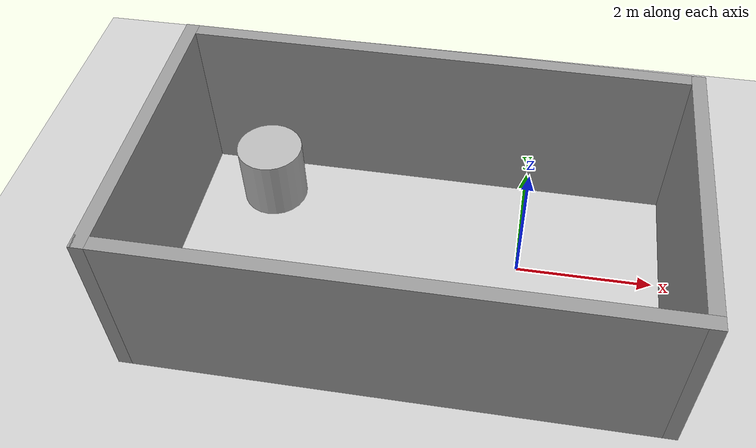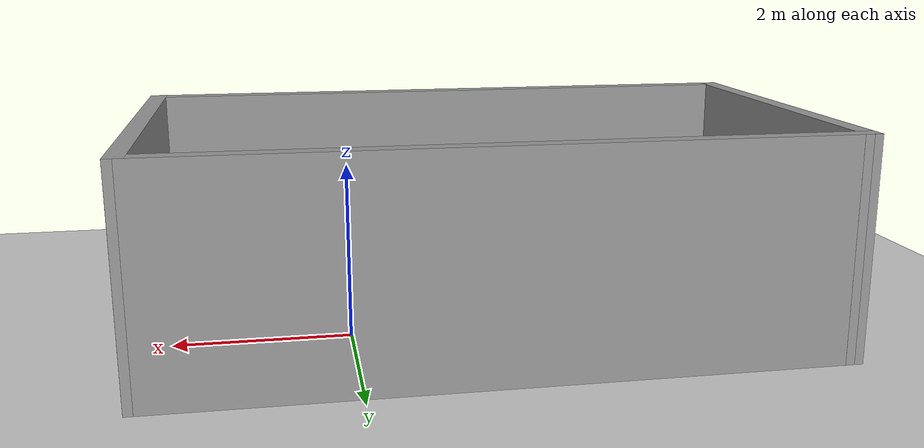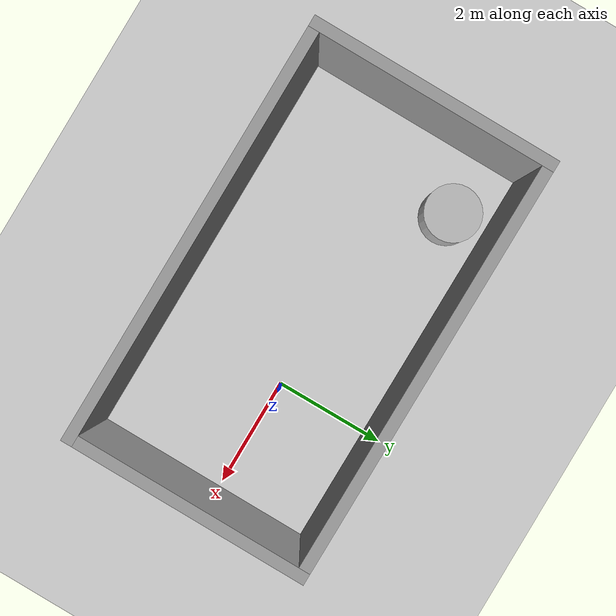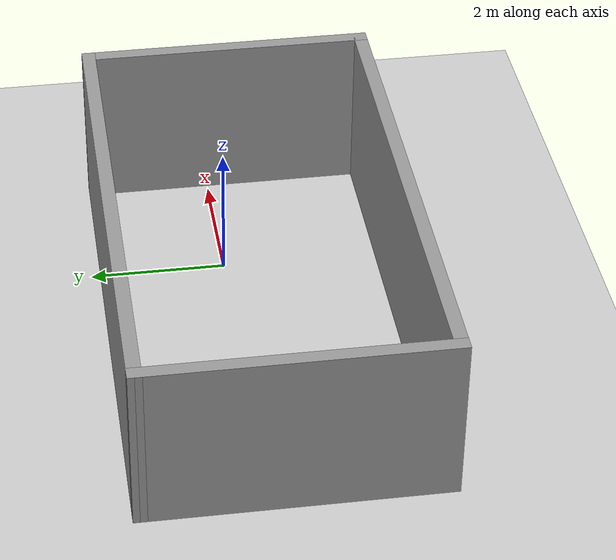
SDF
<?xml version="1.0"?>
<sdf version="1.4">
  <world name="default">

    <!-- Ground Plane -->
    <include>
      <uri>model://ground_plane</uri>
    </include>

    <include>
      <uri>model://sun</uri>
    </include>

    <model name="cylinder">
      <pose>-4 1 0.5 0 0 0</pose>
      <link name="link">
        <collision name="collision">
          <geometry>
            <cylinder>
              <radius>0.5</radius>
              <length>1</length>
            </cylinder>
          </geometry>
	  <surface>
            <friction>
              <ode>
                <mu>0</mu>
                <mu2>0</mu2>
                <slip1>0</slip1>
                <slip2>0</slip2>
              </ode>
            </friction>
          </surface>
        </collision>

        <visual name="visual">
          <geometry>
            <cylinder>
              <radius>0.5</radius>
              <length>1</length>
            </cylinder>
          </geometry>
        </visual>
      </link>

      <plugin name="model_push" filename="libmodel_push.so"/>
    </model>

    <model name='world1'>
      <link name='Wall_2'>
        <collision name='Wall_2_Collision'>
          <geometry>
            <box>
              <size>4.40374 0.2 2.5</size>
            </box>
          </geometry>
          <pose>0 0 1.25 0 -0 0</pose>
          <max_contacts>10</max_contacts>
          <surface>
            <bounce/>
            <friction>
              <ode/>
            </friction>
            <contact>
              <ode/>
            </contact>
          </surface>
        </collision>
        <visual name='Wall_2_Visual'>
          <pose>0 0 1.25 0 -0 0</pose>
          <geometry>
            <box>
              <size>4.40374 0.2 2.5</size>
            </box>
          </geometry>
          <material>
            <script>
              <uri>file://media/materials/scripts/gazebo.material</uri>
              <name>Gazebo/Grey</name>
            </script>
          </material>
        </visual>
        <velocity_decay>
          <linear>0</linear>
          <angular>0</angular>
        </velocity_decay>
        <pose>-5.23392 -0.301945 0 0 0 -1.5708</pose>
        <self_collide>0</self_collide>
        <kinematic>0</kinematic>
        <gravity>1</gravity>
      </link>
      <link name='Wall_3'>
        <collision name='Wall_3_Collision'>
          <geometry>
            <box>
              <size>7.64202 0.2 2.5</size>
            </box>
          </geometry>
          <pose>0 0 1.25 0 -0 0</pose>
          <max_contacts>10</max_contacts>
          <surface>
            <bounce/>
            <friction>
              <ode/>
            </friction>
            <contact>
              <ode/>
            </contact>
          </surface>
        </collision>
        <visual name='Wall_3_Visual'>
          <pose>0 0 1.25 0 -0 0</pose>
          <geometry>
            <box>
              <size>7.64202 0.2 2.5</size>
            </box>
          </geometry>
          <material>
            <script>
              <uri>file://media/materials/scripts/gazebo.material</uri>
              <name>Gazebo/Grey</name>
            </script>
          </material>
        </visual>
        <velocity_decay>
          <linear>0</linear>
          <angular>0</angular>
        </velocity_decay>
        <pose>-1.51291 -2.40381 0 0 -0 0</pose>
        <self_collide>0</self_collide>
        <kinematic>0</kinematic>
        <gravity>1</gravity>
      </link>
      <link name='Wall_4'>
        <collision name='Wall_4_Collision'>
          <geometry>
            <box>
              <size>4.36351 0.2 2.5</size>
            </box>
          </geometry>
          <pose>0 0 1.25 0 -0 0</pose>
          <max_contacts>10</max_contacts>
          <surface>
            <bounce/>
            <friction>
              <ode/>
            </friction>
            <contact>
              <ode/>
            </contact>
          </surface>
        </collision>
        <visual name='Wall_4_Visual'>
          <pose>0 0 1.25 0 -0 0</pose>
          <geometry>
            <box>
              <size>4.36351 0.2 2.5</size>
            </box>
          </geometry>
          <material>
            <script>
              <uri>file://media/materials/scripts/gazebo.material</uri>
              <name>Gazebo/Grey</name>
            </script>
          </material>
        </visual>
        <velocity_decay>
          <linear>0</linear>
          <angular>0</angular>
        </velocity_decay>
        <pose>2.2081 -0.322059 0 0 -0 1.5708</pose>
        <self_collide>0</self_collide>
        <kinematic>0</kinematic>
        <gravity>1</gravity>
      </link>
      <link name='Wall_5'>
        <collision name='Wall_5_Collision'>
          <geometry>
            <box>
              <size>7.64213 0.2 2.5</size>
            </box>
          </geometry>
          <pose>0 0 1.25 0 -0 0</pose>
          <max_contacts>10</max_contacts>
          <surface>
            <bounce/>
            <friction>
              <ode/>
            </friction>
            <contact>
              <ode/>
            </contact>
          </surface>
        </collision>
        <visual name='Wall_5_Visual'>
          <pose>0 0 1.25 0 -0 0</pose>
          <geometry>
            <box>
              <size>7.64213 0.2 2.5</size>
            </box>
          </geometry>
          <material>
            <script>
              <uri>file://media/materials/scripts/gazebo.material</uri>
              <name>Gazebo/Grey</name>
            </script>
          </material>
        </visual>
        <velocity_decay>
          <linear>0</linear>
          <angular>0</angular>
        </velocity_decay>
        <pose>-1.51291 1.77981 0 0 -0 3.13619</pose>
        <self_collide>0</self_collide>
        <kinematic>0</kinematic>
        <gravity>1</gravity>
      </link>
      <static>1</static>
    </model>

  </world>
</sdf>
